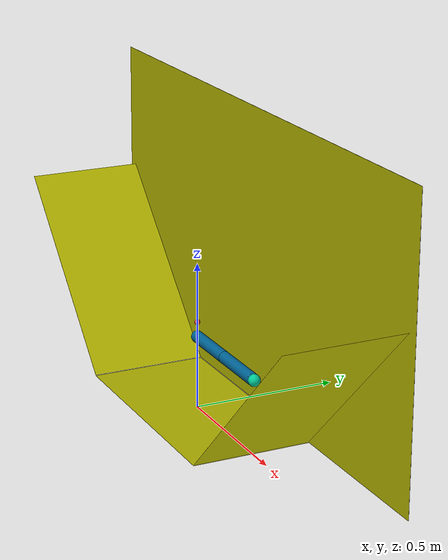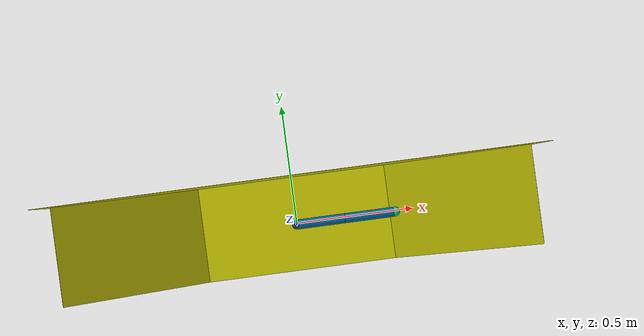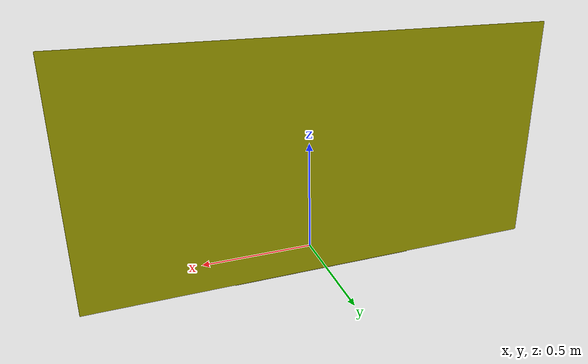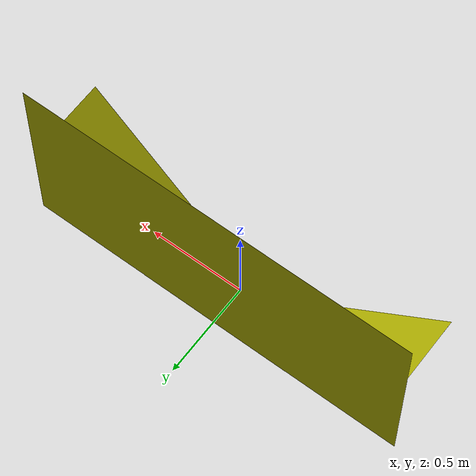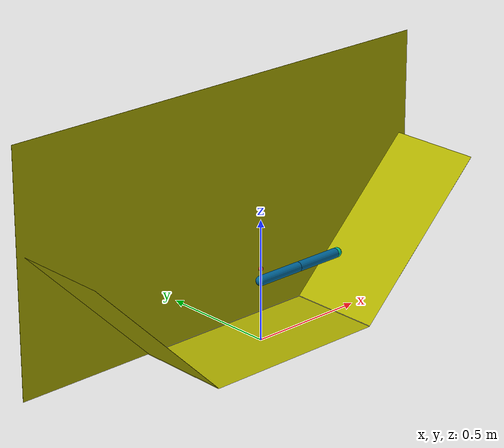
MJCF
<mujoco model="reacher_vertical">
    <compiler angle="radian" inertiafromgeom="true"/>
    <default>
        <joint armature="5" damping="1" limited="true"/>
        <geom rgba="0.7 0.7 0 1"/>
    </default>
    <option gravity="0 0 -9.81" integrator="RK4" timestep="0.04" />
    <worldbody>
        <!-- Arena -->
        <light name="light" directional="true" diffuse=".6 .6 .6" pos="0 0 1" specular=".3 .3 .3"/>
        <geom name="floor" type="plane" pos="0 0 0" size=".4 .2 10"/>
        <geom name="wall1" type="plane" pos="-.682843 0 .282843" size=".4 .2 10" zaxis="1 0 1"/>
        <geom name="wall2" type="plane" pos=".682843 0 .282843" size=".4 .2 10" zaxis="-1 0 1"/>
        <geom name="background" type="plane" pos="0 .2 .5" size="1 .5 10" zaxis="0 -1 0"/>

        <!-- Arm -->
        <body name="body0" pos="0 0 0.25">
            <geom fromto="0 0 0 0.2 0 0" name="link0" rgba="0.0 0.4 0.6 1" size=".02" type="capsule"/>
            <joint axis="0 -1 0" limited="false" name="joint0" pos="0 0 0" type="hinge"/>
            <body name="body1" pos="0.2 0 0">
                <joint axis="0 -1 0" limited="true" name="joint1" pos="0 0 0" range="-3.0 3.0" type="hinge"/>
                <geom fromto="0 0 0 0.2 0 0" name="link1" rgba="0.0 0.4 0.6 1" size=".02" type="capsule"/>
                <body name="fingertip" pos="0.21 0 0">
                    <geom name="fingertip" pos="0 0 0" rgba="0.0 0.8 0.6 1" size=".02" type="sphere"/>
                </body>
            </body>
        </body>
        <!-- Target -->
        <body name="target" pos="0 0 0.3">
            <geom mass="0" conaffinity="0" contype="0" name="target" pos="0 0 0" rgba="0.9 0.2 0.2 1" size=".009" type="sphere"/>
        </body>
    </worldbody>
    <actuator>
        <motor ctrllimited="true" ctrlrange="-1.0 1.0" gear="12.0" joint="joint0"/>
        <motor ctrllimited="true" ctrlrange="-1.0 1.0" gear="12.0" joint="joint1"/>
    </actuator>
</mujoco>
